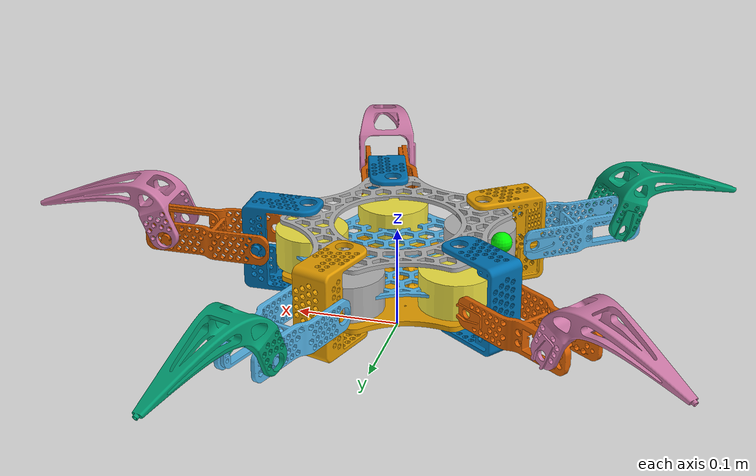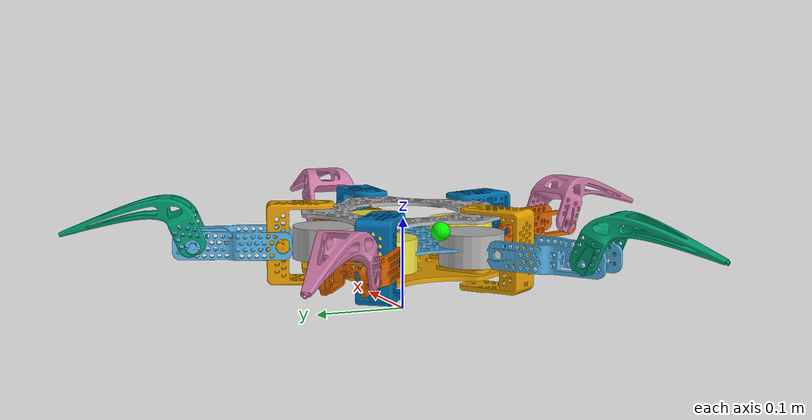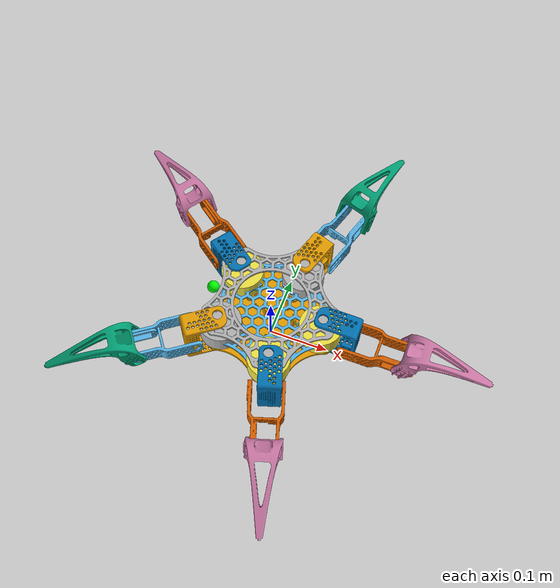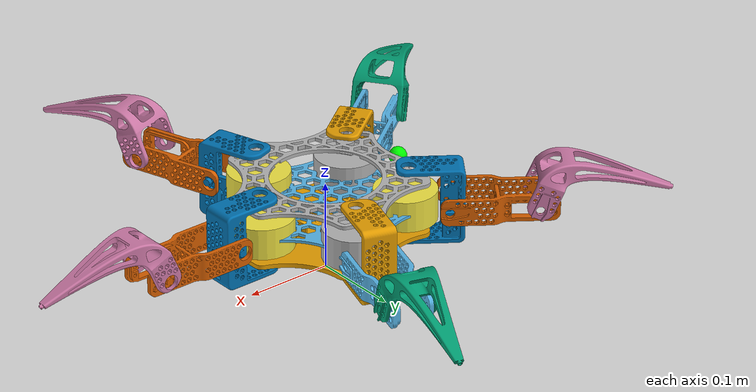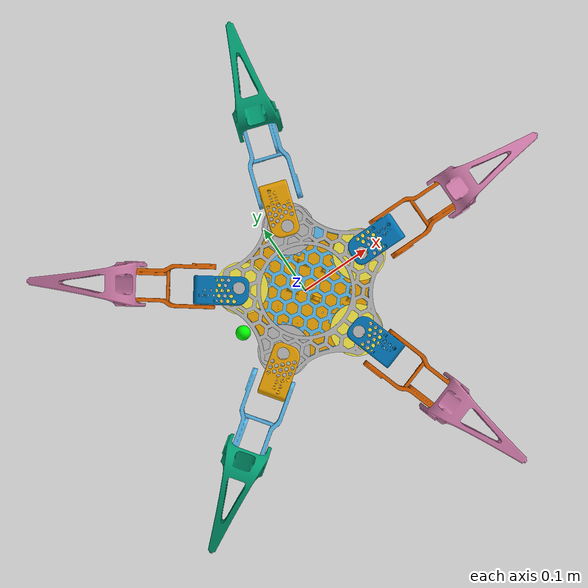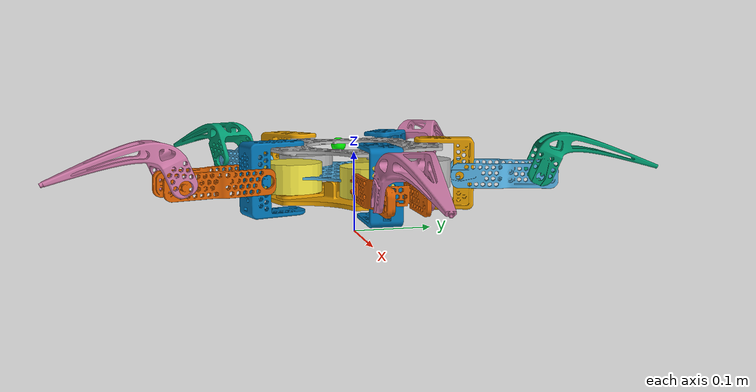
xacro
<?xml version="1.0"?>

<robot name="penta_bot" xmlns:xacro="http://www.ros.org/wiki/xacro">

  <xacro:property name="PI" value="3.141592" />
  <xacro:property name="PI2" value="${PI/2}" />
  <xacro:property name="base_visual_yaw" value="0.32" />

  <link name="base_footprint"/>

  <link name="base_link">
    <visual>
      <geometry>
        <mesh filename="package://penta_description/meshes/visual/penta_stl_v1/Chassi_middle.stl" scale="0.001 0.001 0.001"/>
      </geometry>
      <origin xyz="0.0 0.0 0.0" rpy="0 0 ${base_visual_yaw}"/>
    </visual>
  </link>

  <joint name="joint_robot_body_center" type="floating">
    <parent link="base_footprint"/>
    <child link="base_link"/>
    <origin xyz="0.0 0.0 0.075" rpy="0 0 0"/>
  </joint>

  <link name="head_link">
    <visual>
      <geometry>
        <sphere radius="0.01"/>
      </geometry>
      <material name="green">
        <color rgba="0 1 0 1"/>
      </material>
    </visual>
  </link>

  <joint name="head_base" type="fixed">
    <parent link="base_link"/>
    <child link="head_link"/>
    <origin xyz="-0.1 0.0 0.025" rpy="0 0 0"/>
  </joint>

  <xacro:macro name="add_base_plate" params="name stl_file_name z">
    <link name="${name}_link">
      <visual>
        <geometry>
          <mesh filename="package://penta_description/meshes/visual/penta_stl_v1/${stl_file_name}" scale="0.001 0.001 0.001"/>
        </geometry>
        <origin xyz="0.0 0.0 0.0" rpy="0 0 ${base_visual_yaw}"/>
      </visual>
    </link>
    <joint name="${name}_joint" type="fixed">
      <parent link="base_link"/>
      <child link="${name}_link"/>
    <origin xyz="0.0 0.0 ${z}" rpy="0 0 0"/>
  </joint>
  </xacro:macro>

  <xacro:macro name="add_leg" params="prefix shoulderxyz shoulderrpy">
    <link name="${prefix}_shoulder_motor">
      <visual>
        <geometry>
          <cylinder radius="0.0350" length="0.035"/>
        </geometry>
        <origin xyz="0.0 0.0 0.0" rpy="0 0 0"/>
      </visual>
    </link>

    <link name="${prefix}_shoulder_link">
      <visual>
        <geometry>
          <mesh filename="package://penta_description/meshes/visual/penta_stl_v1/Shoulder.stl" scale="0.001 0.001 0.001"/>
        </geometry>
        <origin xyz="0.0 0.0 0.0" rpy="-${PI2} 0 0"/>
      </visual>
    </link>

    <link name="${prefix}_upper_arm_link">
      <visual>
        <geometry>
          <mesh filename="package://penta_description/meshes/visual/penta_stl_v1/Upper_arm.stl" scale="0.001 0.001 0.001"/>
        </geometry>
        <origin xyz="0.0 0.0 0.0" rpy="0 0 0"/>
      </visual>
    </link>

    <link name="${prefix}_lower_arm_link">
      <visual>
        <geometry>
          <mesh filename="package://penta_description/meshes/visual/penta_stl_v1/Lower_arm.stl" scale="0.001 0.001 0.001"/>
        </geometry>
        <origin xyz="0.0 0.0 0.0" rpy="-${PI2} ${PI2} 0.4"/>
      </visual>
    </link>

    <joint name="${prefix}/joint_shoulder_motor" type="fixed">
      <parent link="base_link"/>
      <child link="${prefix}_shoulder_motor"/>
      <origin xyz="${shoulderxyz}" rpy="${shoulderrpy}"/>
    </joint>

    <joint name="${prefix}/joint0" type="continuous">
      <parent link="${prefix}_shoulder_motor"/>
      <child link="${prefix}_shoulder_link"/>
      <origin xyz="0.0 0.0 0.0" rpy="0 0 0"/>
      <axis xyz="0 0 1" />
    </joint>

    <joint name="${prefix}/joint1" type="continuous">
      <parent link="${prefix}_shoulder_link"/>
      <child link="${prefix}_upper_arm_link"/>
      <origin xyz="0.0455 0.0 0.0" rpy="-1.57 0 0"/>
      <axis xyz="0 0 1" />
    </joint>

    <joint name="${prefix}/joint2" type="continuous">
      <parent link="${prefix}_upper_arm_link"/>
      <child link="${prefix}_lower_arm_link"/>
      <origin xyz="0.096 0.0 0.0" rpy="0 0 0"/>
      <axis xyz="0 0 1" />
    </joint>

  </xacro:macro>

<xacro:add_leg prefix="limb0" shoulderxyz="${0.085*cos(0.*3.141592/2.5)} ${0.085*sin(0.*3.141592/2.5)} 0." shoulderrpy="0. 0. ${(0.*3.141592/2.5)}"/>
<xacro:add_leg prefix="limb1" shoulderxyz="${0.085*cos(1.*3.141592/2.5)} ${0.085*sin(1.*3.141592/2.5)} 0." shoulderrpy="0. 0. ${(1.*3.141592/2.5)}"/>
<xacro:add_leg prefix="limb2" shoulderxyz="${0.085*cos(2.*3.141592/2.5)} ${0.085*sin(2.*3.141592/2.5)} 0." shoulderrpy="0. 0. ${(2.*3.141592/2.5)}"/>
<xacro:add_leg prefix="limb3" shoulderxyz="${0.085*cos(3.*3.141592/2.5)} ${0.085*sin(3.*3.141592/2.5)} 0." shoulderrpy="0. 0. ${(3.*3.141592/2.5)}"/>
<xacro:add_leg prefix="limb4" shoulderxyz="${0.085*cos(4.*3.141592/2.5)} ${0.085*sin(4.*3.141592/2.5)} 0." shoulderrpy="0. 0. ${(4.*3.141592/2.5)}"/>

<xacro:add_base_plate name="upper_plate" stl_file_name="Chassi_top.stl" z="0.03"/>
<xacro:add_base_plate name="lower_plate" stl_file_name="Chassi_bottom.stl" z="-0.03"/>

</robot>
